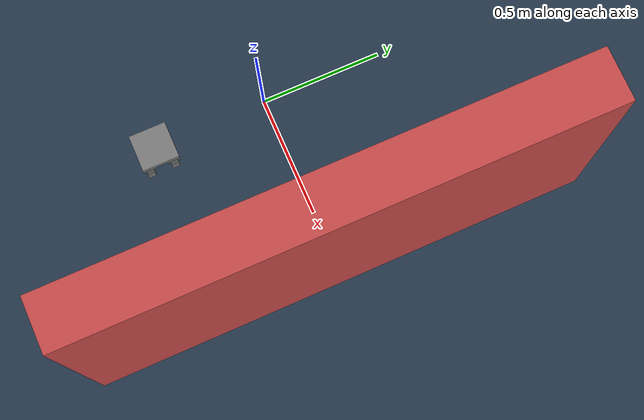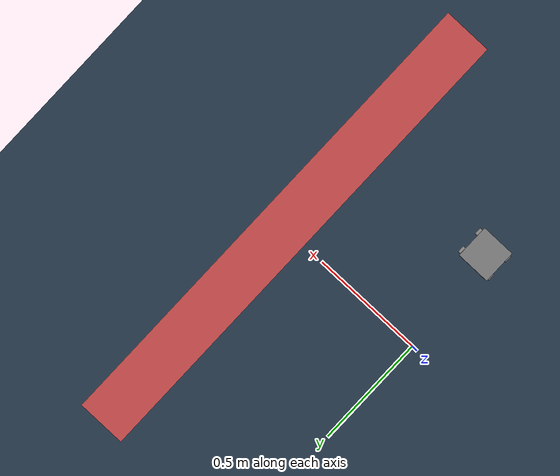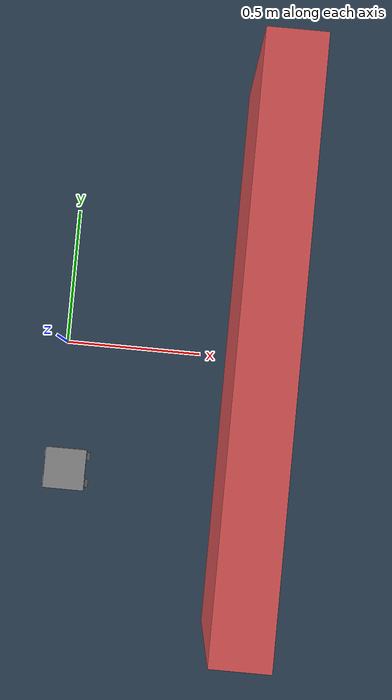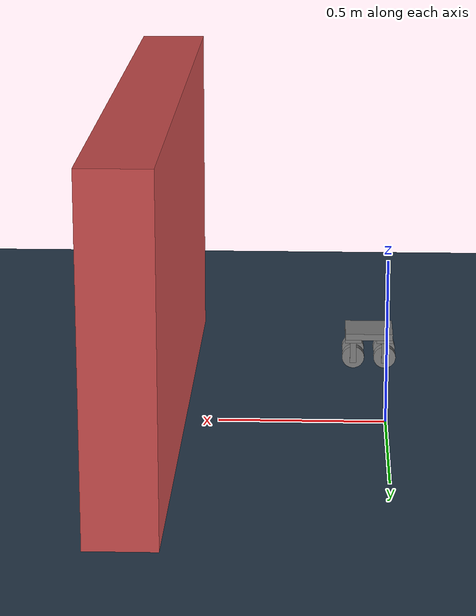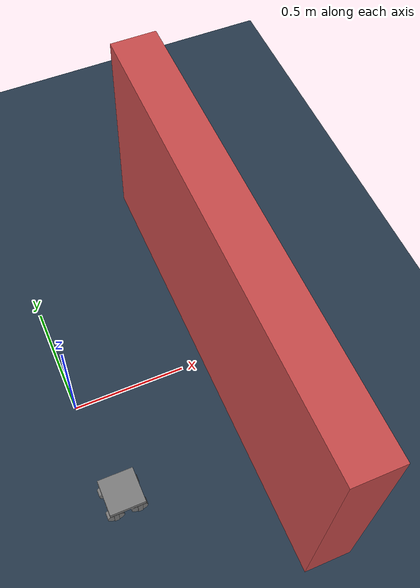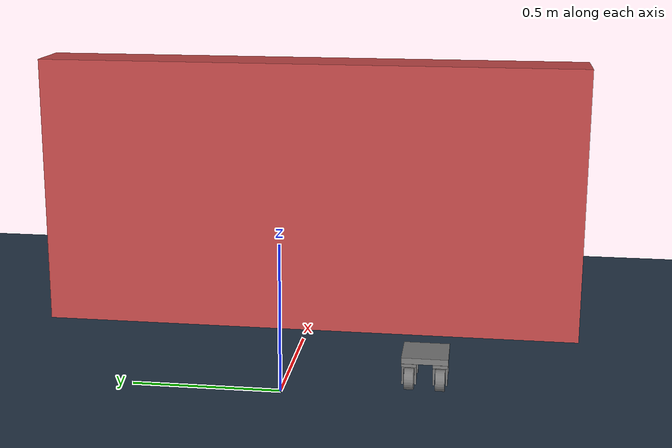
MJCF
<mujoco>
    <compiler meshdir="asset" texturedir="asset" />
    <statistic extent="1.5" meansize=".05" />

    <option timestep="0.005" jacobian="sparse" />

    <visual>
        <rgba haze="0.15 0.25 0.35 1" />
        <quality shadowsize="4096" />
        <map stiffness="700" shadowscale="0.5" fogstart="10" fogend="15" zfar="40" haze="0.3" />
    </visual>

    <asset>
        <texture type="skybox" builtin="gradient" rgb1="0.3 0.5 0.7" rgb2="0 0 0" width="512"
            height="512" />
        <texture name="texplane" type="2d" builtin="checker" rgb1=".2 .3 .4" rgb2=".1 0.15 0.2"
            width="512" height="512" mark="cross" markrgb=".8 .8 .8" />
        <material name="matplane" reflectance="0.3" texture="texplane" texrepeat="1 1"
            texuniform="true" />
    </asset>

    <default>
        <default class="active_adhesion">
            <geom rgba=".8 .5 .5 1" margin=".01" gap=".01" />
        </default>
    </default>

    <worldbody>
        <body name="swerve_wheel_robot" pos="0 0 .03"
            quat="0.707105 0.0 0.0 -0.707105">
            <freejoint name="space" />
            <geom name="Body" size="0.075 0.075 0.01" pos="0.471 0.044 0.11"
                quat="1.99885e-06 -0.707109 0.707105 -1.22469e-07" type="box" />
            <body name="wheel_cover" pos="0.421 0.094 0.0985"
                quat="-0.707114 8.15729e-07 1.76776e-06 -0.707099">
                <inertial pos="3.8e-05 -1.7e-05 -0.017631" quat="0.5 0.498913 -0.501087 0.499997"
                    mass="0.0194363" diaginertia="1.44277e-05 1.19776e-05 8.2964e-06" />
                <joint name="direction_joint_1" pos="0 0 0" axis="0 0 1" />
                <geom name="wheel_cover" size="0.002813 0.01 0.032659"
                    pos="0.000101 0.020624 -0.040796"
                    quat="-0.707111 -7.61232e-05 0.000118086 0.707103" type="box" />
                <geom size="0.002813 0.01 0.032659" pos="0.000101 -0.020719 -0.040794"
                    quat="-0.707111 -7.61232e-05 0.000118086 0.707103" type="box" />
                <geom size="0.0050005 0.0234385 0.025782" pos="0 1e-06 -0.003548"
                    quat="1.91313e-05 0.707086 1.95935e-05 0.707127" type="box" />
                <body name="magnet_wheel_1" pos="4.9e-05 -4.8e-05 -0.058"
                    quat="2.03842e-05 -2.10902e-05 0.707126 0.707088" >
                    <inertial pos="0 0 0" quat="0.5 0.5 -0.5 0.5" mass="0.0573566"
                        diaginertia="3.49059e-05 2.17547e-05 2.17547e-05" />
                    <joint name="driven_joint_1" pos="0 0 0" axis="0 0 1" />
                    <geom name="magnet_wheel_1" size="0.035 0.015"
                        quat="-1.73205e-07 -5e-07 1 0"
                        type="cylinder" />
                </body>
            </body>
            <body name="wheel_cover_2" pos="0.421002 -0.005998 0.0985"
                quat="-0.707114 8.15729e-07 1.76776e-06 -0.707099">
                <inertial pos="3.8e-05 -1.7e-05 -0.017631" quat="0.5 0.498913 -0.501087 0.499997"
                    mass="0.0194363" diaginertia="1.44277e-05 1.19776e-05 8.2964e-06" />
                <joint name="direction_joint_2" pos="0 0 0" axis="0 0 1" />
                <geom size="0.002813 0.01 0.032659" pos="0.000101 0.020624 -0.040796"
                    quat="-0.707111 -7.61232e-05 0.000118086 0.707103" type="box" />
                <geom size="0.002813 0.01 0.032659" pos="0.000101 -0.020719 -0.040794"
                    quat="-0.707111 -7.61232e-05 0.000118086 0.707103" type="box" />
                <geom size="0.0050005 0.0234385 0.025782" pos="0 1e-06 -0.003548"
                    quat="1.91313e-05 0.707086 1.95935e-05 0.707127" type="box" />
                <body name="magnet_wheel_2" pos="4.9e-05 -4.8e-05 -0.058"
                    quat="2.03842e-05 -2.10902e-05 0.707126 0.707088" >
                    <inertial pos="0 0 0" quat="0 0.707107 0 0.707107" mass="0.0573566"
                        diaginertia="3.49059e-05 2.17547e-05 2.17547e-05" />
                    <joint name="driven_joint_2" pos="0 0 0" axis="0 0 1" />
                    <geom name="magnet_wheel_2" size="0.035 0.015"
                        quat="-1.73205e-07 0 1 0"
                        type="cylinder" />
                </body>
            </body>
            <body name="wheel_cover_3" pos="0.521 0.094001 0.0985"
                quat="-0.707114 8.15729e-07 1.76776e-06 -0.707099">
                <inertial pos="3.8e-05 3e-05 -0.017631" quat="0.5 0.498913 -0.501087 0.499997"
                    mass="0.0194363" diaginertia="1.44277e-05 1.19776e-05 8.2964e-06" />
                <joint name="direction_joint_3" pos="0 0 0" axis="0 0 1" />
                <geom size="0.002813 0.01 0.032659" pos="0.000101 0.020671 -0.040796"
                    quat="-0.707111 -7.61232e-05 0.000118086 0.707103" type="box" />
                <geom size="0.002813 0.01 0.032659" pos="0.000101 -0.020672 -0.040794"
                    quat="-0.707111 -7.61232e-05 0.000118086 0.707103" type="box" />
                <geom size="0.0050005 0.0234385 0.025782" pos="0 4.8e-05 -0.003548"
                    quat="1.91313e-05 0.707086 1.95935e-05 0.707127" type="box" />
                <body name="magnet_wheel_3" pos="0 0 -0.058"
                    quat="2.03842e-05 -2.10902e-05 0.707126 0.707087" >
                    <inertial pos="0 0 0" quat="0 0.707107 0 0.707107" mass="0.0573566"
                        diaginertia="3.49059e-05 2.17547e-05 2.17547e-05" />
                    <joint name="driven_joint_3" pos="0 0 0" axis="0 0 1" />
                    <geom name="magnet_wheel_3" size="0.035 0.015"
                        quat="-1.73205e-07 -5e-07 1 0"
                        type="cylinder" />
                </body>
            </body>
            <body name="wheel_cover_4" pos="0.520999 -0.005998 0.0985"
                quat="-0.707114 8.15729e-07 1.76776e-06 -0.707099">
                <inertial pos="3.8e-05 -1.7e-05 -0.017631" quat="0.5 0.498913 -0.501087 0.499997"
                    mass="0.0194363" diaginertia="1.44277e-05 1.19776e-05 8.2964e-06" />
                <joint name="direction_joint_4" pos="0 0 0" axis="0 0 1" />
                <geom size="0.002813 0.01 0.032659" pos="0.000101 0.020624 -0.040796"
                    quat="-0.707111 -7.61232e-05 0.000118086 0.707103" type="box" />
                <geom size="0.002813 0.01 0.032659" pos="0.000101 -0.020719 -0.040794"
                    quat="-0.707111 -7.61232e-05 0.000118086 0.707103" type="box" />
                <geom size="0.0050005 0.0234385 0.025782" pos="0 1e-06 -0.003548"
                    quat="1.91313e-05 0.707086 1.95935e-05 0.707127" type="box" />
                <body name="magnet_wheel_4" pos="4.9e-05 -4.8e-05 -0.058"
                    quat="2.03842e-05 -2.10902e-05 0.707126 0.707088" >
                    <inertial pos="0 0 0" quat="0 0.707107 0 0.707107" mass="0.0573566"
                        diaginertia="3.49059e-05 2.17547e-05 2.17547e-05" />
                    <joint name="driven_joint_4" pos="0 0 0" axis="0 0 1" />
                    <geom name="magnet_wheel_4" size="0.035 0.015"
                        quat="-1.73205e-07 0 1 0"
                        type="cylinder" />
                </body>
            </body>
        </body>

        <body name="wall" pos="0.7 0 0.5">
            <geom name="wall_geom" type="box" size="0.1 1 0.5" rgba="0.8 0.3 0.3 1" friction="2 0.1 0.01"/>
        </body>

        <light directional="true" diffuse=".4 .4 .4" specular="0.1 0.1 0.1" pos="0 0 5.0"
            dir="0 0 -1" castshadow="false" />
        <light directional="true" diffuse=".6 .6 .6" specular="0.2 0.2 0.2" pos="0 0 4"
            dir="0 0 -1" />

        <geom name="ground" type="plane" size="0 0 1" pos="0 0 0" quat="1 0 0 0"
            material="matplane"
            condim="1" />
        <body mocap="true" pos="-.1 .05 0" zaxis=".5 0 1">
        </body>

    </worldbody>

    <actuator>

        <motor name="space" joint="space" />

        <position name="direction_joint_1" joint="direction_joint_1" kp="0.5" kv="0.01" />
        <velocity name="driven_joint_1" joint="driven_joint_1" kv="0.01" />

        <position name="direction_joint_2" joint="direction_joint_2" kp="0.5" kv="0.01" />
        <velocity name="driven_joint_2" joint="driven_joint_2" kv="0.01" />

        <position name="direction_joint_3" joint="direction_joint_3" kp="0.5" kv="0.01" />
        <velocity name="driven_joint_3" joint="driven_joint_3" kv="0.01" />

        <position name="direction_joint_4" joint="direction_joint_4" kp="0.5" kv="0.01" />
        <velocity name="driven_joint_4" joint="driven_joint_4" kv="0.01" />

        <adhesion name="magnet_wheel_1" body="magnet_wheel_1" ctrlrange="0 1" gain="5"/>
        <adhesion name="magnet_wheel_2" body="magnet_wheel_2" ctrlrange="0 1" gain="5"/>
        <adhesion name="magnet_wheel_3" body="magnet_wheel_3" ctrlrange="0 1" gain="5"/>
        <adhesion name="magnet_wheel_4" body="magnet_wheel_4" ctrlrange="0 1" gain="5"/>

    </actuator>

</mujoco>
